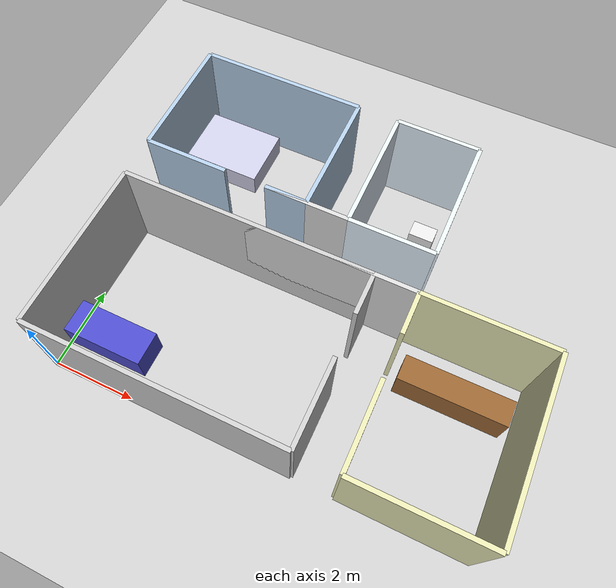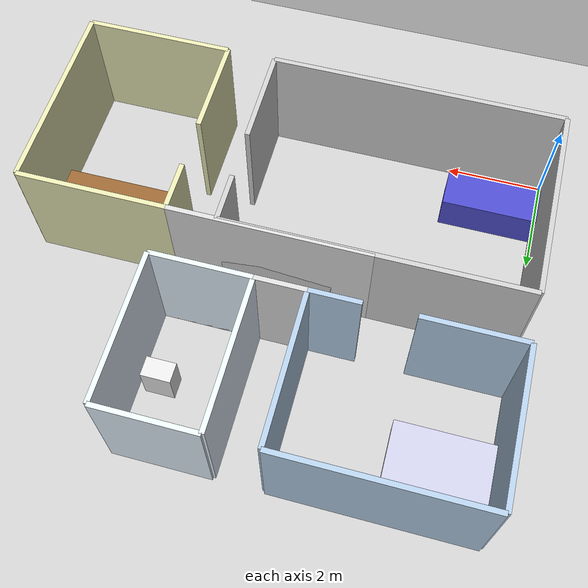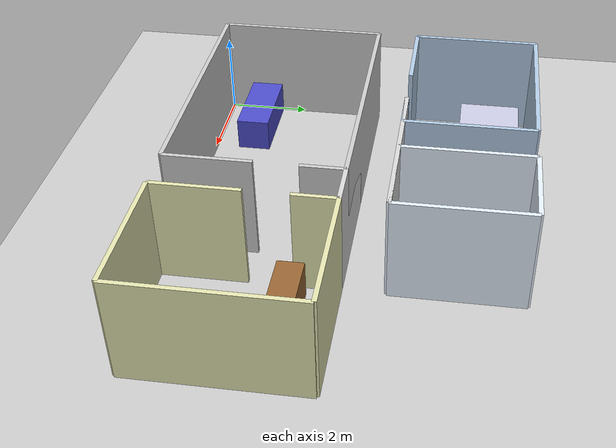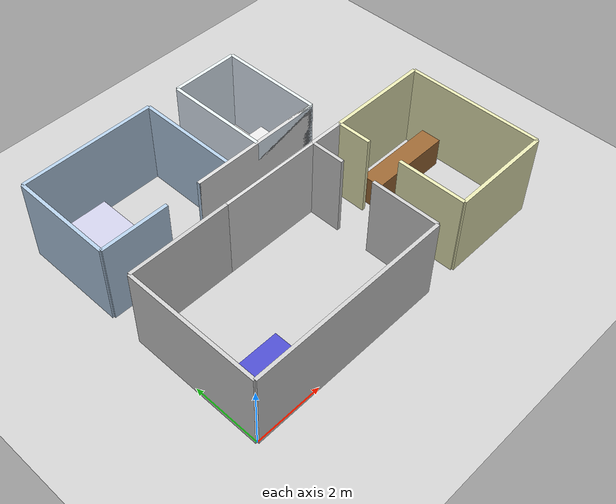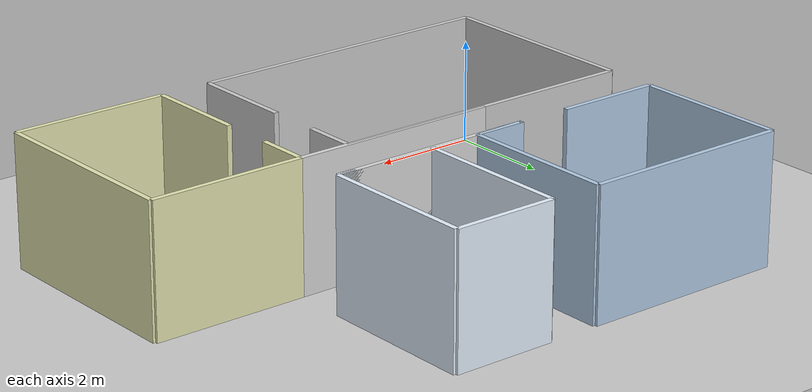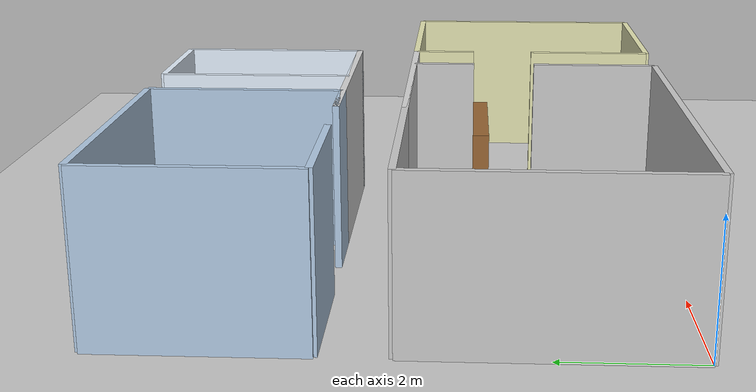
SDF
<?xml version="1.0" ?>
<sdf version="1.6">
  <world name="apartment">

    <!-- Physics -->
    <physics name="default_physics" default="0" type="ode">
      <gravity>0 0 -9.8066</gravity>
      <ode>
        <solver>
          <type>quick</type>
          <iters>10</iters>
          <sor>1.3</sor>
        </solver>
        <constraints>
          <cfm>0.0</cfm>
          <erp>0.2</erp>
          <contact_max_correcting_vel>100.0</contact_max_correcting_vel>
          <contact_surface_layer>0.001</contact_surface_layer>
        </constraints>
      </ode>
      <max_step_size>0.004</max_step_size>
      <real_time_factor>1.0</real_time_factor>
      <real_time_update_rate>250</real_time_update_rate>
    </physics>

    <!-- Light -->
    <include>
      <uri>model://sun</uri>
    </include>

    <!-- Ground Plane -->
    <include>
      <uri>model://ground_plane</uri>
    </include>

    <!-- Apartment Layout based on rooms.yaml -->

    <!-- Living Room (0, 0, 6, 4) -->
    <model name="living_room_walls">
      <static>true</static>
      <pose>3 2 1.25 0 0 0</pose>

      <!-- North wall -->
      <link name="north_wall">
        <pose>0 2 0 0 0 0</pose>
        <collision name="collision">
          <geometry>
            <box>
              <size>6 0.1 2.5</size>
            </box>
          </geometry>
        </collision>
        <visual name="visual">
          <geometry>
            <box>
              <size>6 0.1 2.5</size>
            </box>
          </geometry>
          <material>
            <ambient>0.8 0.8 0.8 1</ambient>
            <diffuse>0.8 0.8 0.8 1</diffuse>
          </material>
        </visual>
      </link>

      <!-- South wall -->
      <link name="south_wall">
        <pose>0 -2 0 0 0 0</pose>
        <collision name="collision">
          <geometry>
            <box>
              <size>6 0.1 2.5</size>
            </box>
          </geometry>
        </collision>
        <visual name="visual">
          <geometry>
            <box>
              <size>6 0.1 2.5</size>
            </box>
          </geometry>
          <material>
            <ambient>0.8 0.8 0.8 1</ambient>
            <diffuse>0.8 0.8 0.8 1</diffuse>
          </material>
        </visual>
      </link>

      <!-- West wall -->
      <link name="west_wall">
        <pose>-3 0 0 0 0 0</pose>
        <collision name="collision">
          <geometry>
            <box>
              <size>0.1 4 2.5</size>
            </box>
          </geometry>
        </collision>
        <visual name="visual">
          <geometry>
            <box>
              <size>0.1 4 2.5</size>
            </box>
          </geometry>
          <material>
            <ambient>0.8 0.8 0.8 1</ambient>
            <diffuse>0.8 0.8 0.8 1</diffuse>
          </material>
        </visual>
      </link>

      <!-- East wall (partial - door to hallway) -->
      <link name="east_wall_1">
        <pose>3 -1 0 0 0 0</pose>
        <collision name="collision">
          <geometry>
            <box>
              <size>0.1 2 2.5</size>
            </box>
          </geometry>
        </collision>
        <visual name="visual">
          <geometry>
            <box>
              <size>0.1 2 2.5</size>
            </box>
          </geometry>
          <material>
            <ambient>0.8 0.8 0.8 1</ambient>
            <diffuse>0.8 0.8 0.8 1</diffuse>
          </material>
        </visual>
      </link>

      <link name="east_wall_2">
        <pose>3 1.5 0 0 0 0</pose>
        <collision name="collision">
          <geometry>
            <box>
              <size>0.1 1 2.5</size>
            </box>
          </geometry>
        </collision>
        <visual name="visual">
          <geometry>
            <box>
              <size>0.1 1 2.5</size>
            </box>
          </geometry>
          <material>
            <ambient>0.8 0.8 0.8 1</ambient>
            <diffuse>0.8 0.8 0.8 1</diffuse>
          </material>
        </visual>
      </link>
    </model>

    <!-- Kitchen (7, 0, 3, 4) -->
    <model name="kitchen_walls">
      <static>true</static>
      <pose>8.5 2 1.25 0 0 0</pose>

      <!-- North wall -->
      <link name="north_wall">
        <pose>0 2 0 0 0 0</pose>
        <collision name="collision">
          <geometry>
            <box>
              <size>3 0.1 2.5</size>
            </box>
          </geometry>
        </collision>
        <visual name="visual">
          <geometry>
            <box>
              <size>3 0.1 2.5</size>
            </box>
          </geometry>
          <material>
            <ambient>0.9 0.9 0.7 1</ambient>
            <diffuse>0.9 0.9 0.7 1</diffuse>
          </material>
        </visual>
      </link>

      <!-- South wall -->
      <link name="south_wall">
        <pose>0 -2 0 0 0 0</pose>
        <collision name="collision">
          <geometry>
            <box>
              <size>3 0.1 2.5</size>
            </box>
          </geometry>
        </collision>
        <visual name="visual">
          <geometry>
            <box>
              <size>3 0.1 2.5</size>
            </box>
          </geometry>
          <material>
            <ambient>0.9 0.9 0.7 1</ambient>
            <diffuse>0.9 0.9 0.7 1</diffuse>
          </material>
        </visual>
      </link>

      <!-- East wall -->
      <link name="east_wall">
        <pose>1.5 0 0 0 0 0</pose>
        <collision name="collision">
          <geometry>
            <box>
              <size>0.1 4 2.5</size>
            </box>
          </geometry>
        </collision>
        <visual name="visual">
          <geometry>
            <box>
              <size>0.1 4 2.5</size>
            </box>
          </geometry>
          <material>
            <ambient>0.9 0.9 0.7 1</ambient>
            <diffuse>0.9 0.9 0.7 1</diffuse>
          </material>
        </visual>
      </link>

      <!-- West wall (partial - door to hallway) -->
      <link name="west_wall_1">
        <pose>-1.5 -1 0 0 0 0</pose>
        <collision name="collision">
          <geometry>
            <box>
              <size>0.1 2 2.5</size>
            </box>
          </geometry>
        </collision>
        <visual name="visual">
          <geometry>
            <box>
              <size>0.1 2 2.5</size>
            </box>
          </geometry>
          <material>
            <ambient>0.9 0.9 0.7 1</ambient>
            <diffuse>0.9 0.9 0.7 1</diffuse>
          </material>
        </visual>
      </link>

      <link name="west_wall_2">
        <pose>-1.5 1.5 0 0 0 0</pose>
        <collision name="collision">
          <geometry>
            <box>
              <size>0.1 1 2.5</size>
            </box>
          </geometry>
        </collision>
        <visual name="visual">
          <geometry>
            <box>
              <size>0.1 1 2.5</size>
            </box>
          </geometry>
          <material>
            <ambient>0.9 0.9 0.7 1</ambient>
            <diffuse>0.9 0.9 0.7 1</diffuse>
          </material>
        </visual>
      </link>
    </model>

    <!-- Bedroom (0, 5, 4, 3) -->
    <model name="bedroom_walls">
      <static>true</static>
      <pose>2 6.5 1.25 0 0 0</pose>

      <!-- North wall -->
      <link name="north_wall">
        <pose>0 1.5 0 0 0 0</pose>
        <collision name="collision">
          <geometry>
            <box>
              <size>4 0.1 2.5</size>
            </box>
          </geometry>
        </collision>
        <visual name="visual">
          <geometry>
            <box>
              <size>4 0.1 2.5</size>
            </box>
          </geometry>
          <material>
            <ambient>0.7 0.8 0.9 1</ambient>
            <diffuse>0.7 0.8 0.9 1</diffuse>
          </material>
        </visual>
      </link>

      <!-- South wall (partial - door to hallway) -->
      <link name="south_wall_1">
        <pose>-1 -1.5 0 0 0 0</pose>
        <collision name="collision">
          <geometry>
            <box>
              <size>2 0.1 2.5</size>
            </box>
          </geometry>
        </collision>
        <visual name="visual">
          <geometry>
            <box>
              <size>2 0.1 2.5</size>
            </box>
          </geometry>
          <material>
            <ambient>0.7 0.8 0.9 1</ambient>
            <diffuse>0.7 0.8 0.9 1</diffuse>
          </material>
        </visual>
      </link>

      <link name="south_wall_2">
        <pose>1.5 -1.5 0 0 0 0</pose>
        <collision name="collision">
          <geometry>
            <box>
              <size>1 0.1 2.5</size>
            </box>
          </geometry>
        </collision>
        <visual name="visual">
          <geometry>
            <box>
              <size>1 0.1 2.5</size>
            </box>
          </geometry>
          <material>
            <ambient>0.7 0.8 0.9 1</ambient>
            <diffuse>0.7 0.8 0.9 1</diffuse>
          </material>
        </visual>
      </link>

      <!-- West wall -->
      <link name="west_wall">
        <pose>-2 0 0 0 0 0</pose>
        <collision name="collision">
          <geometry>
            <box>
              <size>0.1 3 2.5</size>
            </box>
          </geometry>
        </collision>
        <visual name="visual">
          <geometry>
            <box>
              <size>0.1 3 2.5</size>
            </box>
          </geometry>
          <material>
            <ambient>0.7 0.8 0.9 1</ambient>
            <diffuse>0.7 0.8 0.9 1</diffuse>
          </material>
        </visual>
      </link>

      <!-- East wall -->
      <link name="east_wall">
        <pose>2 0 0 0 0 0</pose>
        <collision name="collision">
          <geometry>
            <box>
              <size>0.1 3 2.5</size>
            </box>
          </geometry>
        </collision>
        <visual name="visual">
          <geometry>
            <box>
              <size>0.1 3 2.5</size>
            </box>
          </geometry>
          <material>
            <ambient>0.7 0.8 0.9 1</ambient>
            <diffuse>0.7 0.8 0.9 1</diffuse>
          </material>
        </visual>
      </link>
    </model>

    <!-- Bathroom (5, 5, 2, 3) -->
    <model name="bathroom_walls">
      <static>true</static>
      <pose>6 6.5 1.25 0 0 0</pose>

      <!-- All walls -->
      <link name="north_wall">
        <pose>0 1.5 0 0 0 0</pose>
        <collision name="collision">
          <geometry>
            <box>
              <size>2 0.1 2.5</size>
            </box>
          </geometry>
        </collision>
        <visual name="visual">
          <geometry>
            <box>
              <size>2 0.1 2.5</size>
            </box>
          </geometry>
          <material>
            <ambient>0.9 0.95 1.0 1</ambient>
            <diffuse>0.9 0.95 1.0 1</diffuse>
          </material>
        </visual>
      </link>

      <link name="south_wall">
        <pose>0 -1.5 0 0 0 0</pose>
        <collision name="collision">
          <geometry>
            <box>
              <size>2 0.1 2.5</size>
            </box>
          </geometry>
        </collision>
        <visual name="visual">
          <geometry>
            <box>
              <size>2 0.1 2.5</size>
            </box>
          </geometry>
          <material>
            <ambient>0.9 0.95 1.0 1</ambient>
            <diffuse>0.9 0.95 1.0 1</diffuse>
          </material>
        </visual>
      </link>

      <link name="west_wall">
        <pose>-1 0 0 0 0 0</pose>
        <collision name="collision">
          <geometry>
            <box>
              <size>0.1 3 2.5</size>
            </box>
          </geometry>
        </collision>
        <visual name="visual">
          <geometry>
            <box>
              <size>0.1 3 2.5</size>
            </box>
          </geometry>
          <material>
            <ambient>0.9 0.95 1.0 1</ambient>
            <diffuse>0.9 0.95 1.0 1</diffuse>
          </material>
        </visual>
      </link>

      <link name="east_wall">
        <pose>1 0 0 0 0 0</pose>
        <collision name="collision">
          <geometry>
            <box>
              <size>0.1 3 2.5</size>
            </box>
          </geometry>
        </collision>
        <visual name="visual">
          <geometry>
            <box>
              <size>0.1 3 2.5</size>
            </box>
          </geometry>
          <material>
            <ambient>0.9 0.95 1.0 1</ambient>
            <diffuse>0.9 0.95 1.0 1</diffuse>
          </material>
        </visual>
      </link>
    </model>

    <!-- Hallway (3, 4, 4, 1) -->
    <model name="hallway_walls">
      <static>true</static>
      <pose>5 4.5 1.25 0 0 0</pose>

      <!-- North wall -->
      <link name="north_wall">
        <pose>0 0.5 0 0 0 0</pose>
        <collision name="collision">
          <geometry>
            <box>
              <size>4 0.1 2.5</size>
            </box>
          </geometry>
        </collision>
        <visual name="visual">
          <geometry>
            <box>
              <size>4 0.1 2.5</size>
            </box>
          </geometry>
          <material>
            <ambient>0.85 0.85 0.85 1</ambient>
            <diffuse>0.85 0.85 0.85 1</diffuse>
          </material>
        </visual>
      </link>

      <!-- South wall -->
      <link name="south_wall">
        <pose>0 -0.5 0 0 0 0</pose>
        <collision name="collision">
          <geometry>
            <box>
              <size>4 0.1 2.5</size>
            </box>
          </geometry>
        </collision>
        <visual name="visual">
          <geometry>
            <box>
              <size>4 0.1 2.5</size>
            </box>
          </geometry>
          <material>
            <ambient>0.85 0.85 0.85 1</ambient>
            <diffuse>0.85 0.85 0.85 1</diffuse>
          </material>
        </visual>
      </link>
    </model>

    <!-- Furniture -->

    <!-- Living room sofa -->
    <model name="sofa">
      <static>true</static>
      <pose>1 1 0.4 0 0 0</pose>
      <link name="link">
        <collision name="collision">
          <geometry>
            <box>
              <size>2 0.8 0.8</size>
            </box>
          </geometry>
        </collision>
        <visual name="visual">
          <geometry>
            <box>
              <size>2 0.8 0.8</size>
            </box>
          </geometry>
          <material>
            <ambient>0.3 0.3 0.8 1</ambient>
            <diffuse>0.3 0.3 0.8 1</diffuse>
          </material>
        </visual>
      </link>
    </model>

    <!-- Kitchen counter -->
    <model name="kitchen_counter">
      <static>true</static>
      <pose>8.5 3 0.45 0 0 0</pose>
      <link name="link">
        <collision name="collision">
          <geometry>
            <box>
              <size>2.5 0.6 0.9</size>
            </box>
          </geometry>
        </collision>
        <visual name="visual">
          <geometry>
            <box>
              <size>2.5 0.6 0.9</size>
            </box>
          </geometry>
          <material>
            <ambient>0.6 0.4 0.2 1</ambient>
            <diffuse>0.6 0.4 0.2 1</diffuse>
          </material>
        </visual>
      </link>
    </model>

    <!-- Bedroom bed -->
    <model name="bed">
      <static>true</static>
      <pose>1 7 0.3 0 0 0</pose>
      <link name="link">
        <collision name="collision">
          <geometry>
            <box>
              <size>2 1.5 0.6</size>
            </box>
          </geometry>
        </collision>
        <visual name="visual">
          <geometry>
            <box>
              <size>2 1.5 0.6</size>
            </box>
          </geometry>
          <material>
            <ambient>0.8 0.8 0.9 1</ambient>
            <diffuse>0.8 0.8 0.9 1</diffuse>
          </material>
        </visual>
      </link>
    </model>

    <!-- Bathroom sink -->
    <model name="sink">
      <static>true</static>
      <pose>6.5 6.5 0.4 0 0 0</pose>
      <link name="link">
        <collision name="collision">
          <geometry>
            <box>
              <size>0.6 0.4 0.8</size>
            </box>
          </geometry>
        </collision>
        <visual name="visual">
          <geometry>
            <box>
              <size>0.6 0.4 0.8</size>
            </box>
          </geometry>
          <material>
            <ambient>0.9 0.9 0.9 1</ambient>
            <diffuse>0.9 0.9 0.9 1</diffuse>
          </material>
        </visual>
      </link>
    </model>

  </world>
</sdf>
